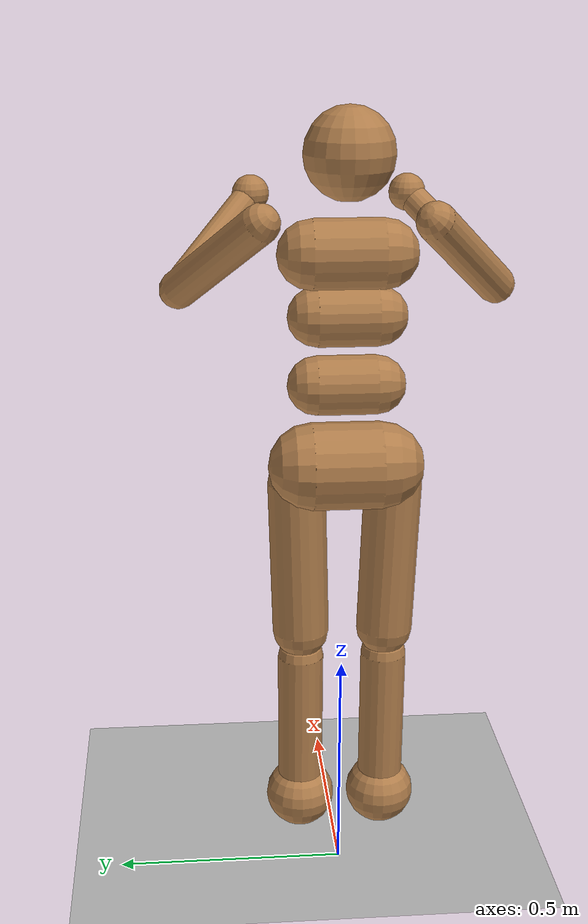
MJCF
<mujoco model="velocity_humanoid">
  <option timestep="0.005" iterations="10" ls_iterations="20" solver="Newton" integrator="implicitfast">
    <flag eulerdamp="disable"/>
  </option>

  <visual>
    <headlight diffuse="0.6 0.6 0.6" ambient="0.3 0.3 0.3" specular="0 0 0"/>
    <rgba force="1 0 0 1" haze="0.15 0.25 0.35 1" fog="0.75 0.75 0.75 1"/>
    <global azimuth="135" elevation="-25" offwidth="1920" offheight="1080"/>
    <map force="0.005"/>
    <scale forcewidth="0.25" contactwidth="0.4" contactheight="0.15" framelength="5.0" framewidth="0.3"/>
    <quality shadowsize="8192"/>
  </visual>

  <asset>
    <texture type="skybox" builtin="gradient" rgb1="0.71 0.71 0.71" rgb2="0.71 0.71 0.71" width="800" height="800"/>
    <texture name="grey_squares" builtin="checker" height="800" width="800" rgb1="0.71 0.71 0.71" rgb2="0.71 0.71 0.71" type="2d" mark="edge" markrgb="1 1 1"/>
    <material name="floor" reflectance="0.2" texrepeat="1 1" texuniform="true" texture="grey_squares"/>
    <material name="body" rgba=".7 .5 .3 1" specular="0.9" shininess="0.8"/>
  </asset>

  <default>
    <default class="humanoid">
      <geom type="capsule" material="body"/>
    </default>
    <default class="visual">
      <geom group="2" density="0" contype="0" conaffinity="0"/>
    </default>
    <joint armature="1" damping="1" limited="true"/>
    <motor ctrllimited="true" ctrlrange="-.4 .4"/>
  </default>

  <worldbody>
    <geom name="floor" pos="0 0 0" size="50 50 0.110" friction="1 0.5 0.5" type="plane" material="floor"/>

    <!-- Humanoid -->
    <body name="humanoid" childclass="humanoid" pos="0 0 1.40">
      <light pos="0 0 2" mode="trackcom"/>
      <site name="imu" quat="1.0 0.0 0.0 0.0" pos="0.0 0.0 0.0" />
      <camera name="default" mode="trackcom" pos="-3.022 0.677 0.067" xyaxes="-0.207 -0.978 -0.000 0.171 -0.036 0.985"/>
      <site name="humanoid" size="0.01" pos="0 0 0"/>
      <joint name="humanoid_root" type="free" armature="0" damping="0" limited="false" pos="0 0 0" stiffness="0"/>
      <geom name="humanoid_torso" fromto="0 -.07 0 0 .07 0" size="0.07" type="capsule"/>
      <geom name="humanoid_head" pos="0 0 .19" size=".09" type="sphere"/>
      <geom name="humanoid_uwaist" fromto="-.01 -.06 -.12 -.01 .06 -.12" size="0.06" type="capsule"/>
      <body name="humanoid_lwaist" pos="-.01 0 -0.260" quat="1.000 0 -0.002 0">
        <geom name="humanoid_lwaist" fromto="0 -.06 0 0 .06 0" size="0.06" type="capsule"/>
        <joint name="humanoid_abdomen_z" armature="0.02" axis="0 0 1" damping="5" pos="0 0 0.065" range="-45 45" stiffness="20" type="hinge"/>
        <joint name="humanoid_abdomen_y" armature="0.02" axis="0 1 0" damping="5" pos="0 0 0.065" range="-75 30" stiffness="10" type="hinge"/>
        <body name="humanoid_pelvis" pos="0 0 -0.165" quat="1.000 0 -0.002 0">
          <joint name="humanoid_abdomen_x" armature="0.02" axis="1 0 0" damping="5" pos="0 0 0.1" range="-35 35" stiffness="10" type="hinge"/>
          <geom name="humanoid_butt" fromto="-.02 -.07 0 -.02 .07 0" size="0.09" type="capsule"/>
          <body name="humanoid_right_thigh" pos="0 -0.1 -0.04">
            <joint name="humanoid_right_hip_x" armature="0.01" axis="1 0 0" damping="5" pos="0 0 0" range="-25 5" stiffness="10" type="hinge"/>
            <joint name="humanoid_right_hip_z" armature="0.01" axis="0 0 1" damping="5" pos="0 0 0" range="-60 35" stiffness="10" type="hinge"/>
            <joint name="humanoid_right_hip_y" armature="0.0080" axis="0 1 0" damping="5" pos="0 0 0" range="-110 20" stiffness="20" type="hinge"/>
            <geom name="humanoid_right_thigh" fromto="0 0 0 0 0.01 -.34" size="0.06" type="capsule"/>
            <body name="humanoid_right_shin" pos="0 0.01 -0.403">
              <joint name="humanoid_right_knee" armature="0.0060" axis="0 -1 0" pos="0 0 .02" range="-160 -2" type="hinge"/>
              <geom name="humanoid_right_shin" fromto="0 0 0 0 0 -.3" size="0.049" type="capsule"/>
              <body name="humanoid_right_foot" pos="0 0 -0.45">
                <geom name="humanoid_right_foot" pos="0 0 0.1" size="0.075" type="sphere"/>
                <site name="humanoid_right_foot" pos="0 0 0.1"/>
              </body>
            </body>
          </body>
          <body name="humanoid_left_thigh" pos="0 0.1 -0.04">
            <joint name="humanoid_left_hip_x" armature="0.01" axis="-1 0 0" damping="5" pos="0 0 0" range="-25 5" stiffness="10" type="hinge"/>
            <joint name="humanoid_left_hip_z" armature="0.01" axis="0 0 -1" damping="5" pos="0 0 0" range="-60 35" stiffness="10" type="hinge"/>
            <joint name="humanoid_left_hip_y" armature="0.01" axis="0 1 0" damping="5" pos="0 0 0" range="-110 20" stiffness="20" type="hinge"/>
            <geom name="humanoid_left_thigh" fromto="0 0 0 0 -0.01 -.34" size="0.06" type="capsule"/>
            <body name="humanoid_left_shin" pos="0 -0.01 -0.403">
              <joint name="humanoid_left_knee" armature="0.0060" axis="0 -1 0" pos="0 0 .02" range="-160 -2" stiffness="1" type="hinge"/>
              <geom name="humanoid_left_shin" fromto="0 0 0 0 0 -.3" size="0.049" type="capsule"/>
              <body name="humanoid_left_foot" pos="0 0 -0.45">
                <geom name="humanoid_left_foot" type="sphere" size="0.075" pos="0 0 0.1"/>
                <site name="humanoid_left_foot" pos="0 0 0.1"/>
              </body>
            </body>
          </body>
        </body>
      </body>
      <body name="humanoid_right_upper_arm" pos="0 -0.17 0.06">
        <joint name="humanoid_right_shoulder1" armature="0.0068" axis="2 1 1" pos="0 0 0" range="-85 60" stiffness="1" type="hinge"/>
        <joint name="humanoid_right_shoulder2" armature="0.0051" axis="0 -1 1" pos="0 0 0" range="-85 60" stiffness="1" type="hinge"/>
        <geom name="humanoid_right_uarm" fromto="0 0 0 .16 -.16 -.16" size="0.04 0.16" type="capsule"/>
        <body name="humanoid_right_lower_arm" pos=".18 -.18 -.18">
          <joint name="humanoid_right_elbow" armature="0.0028" axis="0 -1 1" pos="0 0 0" range="-90 50" stiffness="0" type="hinge"/>
          <geom name="humanoid_right_larm" fromto="0.01 0.01 0.01 .17 .17 .17" size="0.031" type="capsule"/>
          <geom name="humanoid_right_hand" pos=".18 .18 .18" size="0.04" type="sphere"/>
        </body>
      </body>
      <body name="humanoid_left_upper_arm" pos="0 0.17 0.06">
        <joint name="humanoid_left_shoulder1" armature="0.0068" axis="2 -1 1" pos="0 0 0" range="-60 85" stiffness="1" type="hinge"/>
        <joint name="humanoid_left_shoulder2" armature="0.0051" axis="0 1 1" pos="0 0 0" range="-60 85" stiffness="1" type="hinge"/>
        <geom name="humanoid_left_uarm" fromto="0 0 0 .16 .16 -.16" size="0.04 0.16" type="capsule"/>
        <body name="humanoid_left_lower_arm" pos=".18 .18 -.18">
          <joint name="humanoid_left_elbow" armature="0.0028" axis="0 -1 -1" pos="0 0 0" range="-90 50" stiffness="0" type="hinge"/>
          <geom name="humanoid_left_larm" fromto="0.01 -0.01 0.01 .17 -.17 .17" size="0.031" type="capsule"/>
          <geom name="humanoid_left_hand" pos=".18 -.18 .18" size="0.04" type="sphere"/>
        </body>
      </body>
    </body>
  </worldbody>

  <sensor>
    <gyro name="gyro" site="imu" noise="0.01" />
    <accelerometer name="accelerometer" site="imu" noise="0.01" />
    <velocimeter name="local_linvel" site="imu" />
    <frameangvel name="global_angvel" objtype="site" objname="imu" />
    <framelinvel name="global_linvel" objtype="site" objname="imu" />
    <framezaxis name="gravity" objtype="site" objname="imu"/>
    <contact name="left_foot_floor_contact" geom1="humanoid_left_foot" geom2="floor" reduce="mindist" num="1" data="found"/>
    <contact name="right_foot_floor_contact" geom1="humanoid_right_foot" geom2="floor" reduce="mindist" num="1" data="found"/>
    <framelinvel name="left_foot_global_linvel" objtype="site" objname="humanoid_left_foot"/>
    <framelinvel name="right_foot_global_linvel" objtype="site" objname="humanoid_right_foot"/>
    <subtreeangmom name="root_angmom" body="humanoid"/>
  </sensor>

  <actuator>
    <motor gear="100" joint="humanoid_abdomen_y" name="humanoid_abdomen_y"/>
    <motor gear="100" joint="humanoid_abdomen_z" name="humanoid_abdomen_z"/>
    <motor gear="100" joint="humanoid_abdomen_x" name="humanoid_abdomen_x"/>
    <motor gear="100" joint="humanoid_right_hip_x" name="humanoid_right_hip_x"/>
    <motor gear="100" joint="humanoid_right_hip_z" name="humanoid_right_hip_z"/>
    <motor gear="300" joint="humanoid_right_hip_y" name="humanoid_right_hip_y"/>
    <motor gear="200" joint="humanoid_right_knee" name="humanoid_right_knee"/>
    <motor gear="100" joint="humanoid_left_hip_x" name="humanoid_left_hip_x"/>
    <motor gear="100" joint="humanoid_left_hip_z" name="humanoid_left_hip_z"/>
    <motor gear="300" joint="humanoid_left_hip_y" name="humanoid_left_hip_y"/>
    <motor gear="200" joint="humanoid_left_knee" name="humanoid_left_knee"/>
    <motor gear="25" joint="humanoid_right_shoulder1" name="humanoid_right_shoulder1"/>
    <motor gear="25" joint="humanoid_right_shoulder2" name="humanoid_right_shoulder2"/>
    <motor gear="25" joint="humanoid_right_elbow" name="humanoid_right_elbow"/>
    <motor gear="25" joint="humanoid_left_shoulder1" name="humanoid_left_shoulder1"/>
    <motor gear="25" joint="humanoid_left_shoulder2" name="humanoid_left_shoulder2"/>
    <motor gear="25" joint="humanoid_left_elbow" name="humanoid_left_elbow"/>
  </actuator>

  <keyframe>
    <key name="home"
      qpos="0 0 1.25 1 0 0 0
       0 0 0
       0 0 -0.343 -0.669271
       0 0 -0.343 -0.669271
       0.743 -0.669 -0.743
       -0.743 0.669 -0.743"
    />
  </keyframe>
</mujoco>
